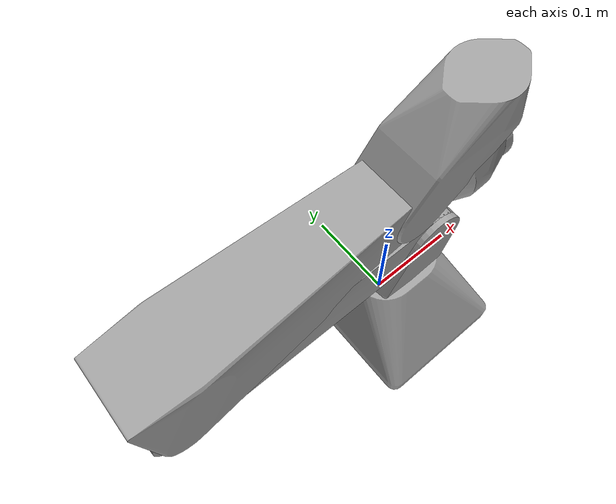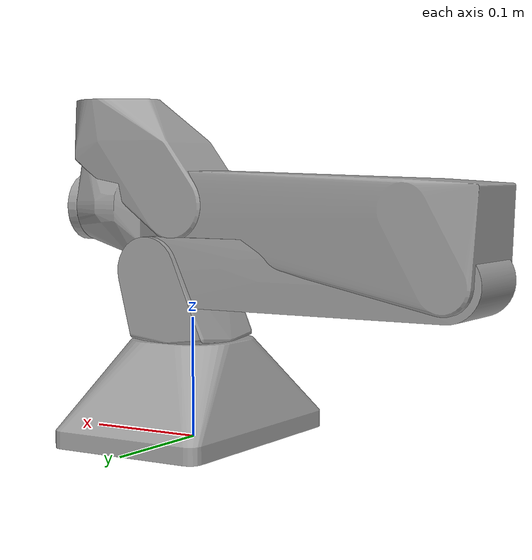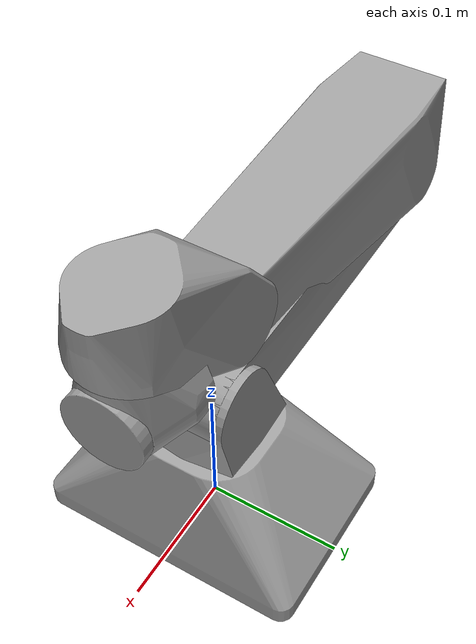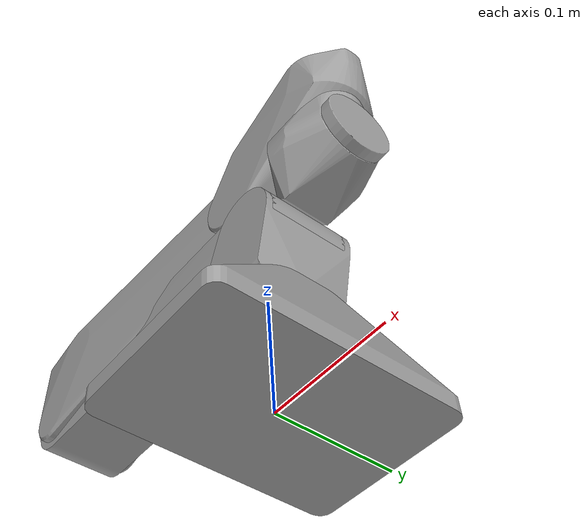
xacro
<?xml version="1.0"?>
<robot xmlns:xacro="http://www.ros.org/wiki/xacro" name="rebot_b601dm_driver">

  <xacro:arg name="prefix"       default=""/>
  <xacro:arg name="mesh_package" default="rebot_b601dm_description"/>

  <xacro:include filename="$(find rebot_b601dm_description)/urdf/rebot_b601dm_arm.xacro"/>

  <xacro:rebot_b601dm_arm prefix="$(arg prefix)" mesh_package="$(arg mesh_package)"/>

  <link name="$(arg prefix)gripper_link"/>
  <joint name="$(arg prefix)gripper_joint" type="fixed">
    <origin xyz="0 0 0.15971" rpy="0 -1.5708 0"/>
    <parent link="$(arg prefix)link6"/>
    <child  link="$(arg prefix)gripper_link"/>
  </joint>

  <!-- The SDK's end_effector_frame. Pose-identical to the full model's
       gripper_tcp by construction. -->
  <link name="$(arg prefix)end_link"/>
  <joint name="$(arg prefix)end_joint" type="fixed">
    <origin xyz="-0.0443 0 0" rpy="0 0 0"/>
    <parent link="$(arg prefix)gripper_link"/>
    <child  link="$(arg prefix)end_link"/>
  </joint>

  <!--
    gripper_tcp is also exposed here, coincident with end_link, so code written
    against the canonical name resolves in both models. Again fixed, so nq == 6.
  -->
  <link name="$(arg prefix)gripper_tcp"/>
  <joint name="$(arg prefix)gripper_tcp_joint" type="fixed">
    <origin xyz="0 0 0" rpy="0 0 0"/>
    <parent link="$(arg prefix)end_link"/>
    <child  link="$(arg prefix)gripper_tcp"/>
  </joint>

</robot>

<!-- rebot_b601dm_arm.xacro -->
<robot xmlns:xacro="http://www.ros.org/wiki/xacro">

  <!-- Velocity limits, kept as properties so the values appear exactly once. -->
  <xacro:property name="vel_j123" value="5.0"/>
  <xacro:property name="vel_j456" value="3.0"/>

  <xacro:macro name="rebot_b601dm_arm" params="prefix mesh_package">

    <link name="${prefix}base_link">
      <inertial>
        <origin xyz="-2.70523135620574E-06 -7.70134319499296E-06 0.028980835090929" rpy="0 0 0"/>
        <mass value="0.79874480798149"/>
        <inertia ixx="0.00167922927706365" ixy="1.88775164237686E-09" ixz="-1.97136369561029E-08"
                 iyy="0.00100413042930826" iyz="2.1823444305057E-07"  izz="0.00243992061460991"/>
      </inertial>
      <visual>
        <origin xyz="0 0 0" rpy="0 0 0"/>
        <geometry><mesh filename="package://${mesh_package}/meshes/visual/base_link.STL"/></geometry>
        <material name="rebot_grey"><color rgba="0.627450980392157 0.627450980392157 0.627450980392157 1"/></material>
      </visual>
      <collision>
        <origin xyz="0 0 0" rpy="0 0 0"/>
        <geometry><mesh filename="package://${mesh_package}/meshes/collision/base_link.STL"/></geometry>
      </collision>
    </link>

    <link name="${prefix}link1">
      <inertial>
        <origin xyz="1.20584908205569E-05 -0.00052246270024925 0.0197721792915801" rpy="0 0 0"/>
        <mass value="0.0840736498625263"/>
        <inertia ixx="8.53930680558479E-05" ixy="5.36083090564592E-11" ixz="8.1878892265138E-06"
                 iyy="5.08885968641724E-05" iyz="1.61532065580032E-10" izz="8.03867731313707E-05"/>
      </inertial>
      <visual>
        <origin xyz="0 0 0" rpy="0 0 0"/>
        <geometry><mesh filename="package://${mesh_package}/meshes/visual/link1.STL"/></geometry>
        <material name="rebot_grey"/>
      </visual>
      <collision>
        <origin xyz="0 0 0" rpy="0 0 0"/>
        <geometry><mesh filename="package://${mesh_package}/meshes/collision/link1.STL"/></geometry>
      </collision>
    </link>

    <joint name="${prefix}joint1" type="revolute">
      <origin xyz="-8.416E-05 0 0.08465" rpy="0 0 0"/>
      <parent link="${prefix}base_link"/>
      <child  link="${prefix}link1"/>
      <axis xyz="0 0 1"/>
      <limit lower="-2.8" upper="2.8" effort="27" velocity="${vel_j123}"/>
    </joint>

    <link name="${prefix}link2">
      <inertial>
        <origin xyz="-0.13224463371047 -0.00305031595315752 -0.0309299400248282" rpy="0 0 0"/>
        <mass value="0.710394385134637"/>
        <inertia ixx="0.00025002655459552" ixy="1.60716279794484E-06" ixz="2.51351488848234E-09"
                 iyy="0.00186321981627926" iyz="4.36542160316282E-07" izz="0.00186007710433815"/>
      </inertial>
      <visual>
        <origin xyz="0 0 0" rpy="0 0 0"/>
        <geometry><mesh filename="package://${mesh_package}/meshes/visual/link2.STL"/></geometry>
        <material name="rebot_grey"/>
      </visual>
      <collision>
        <origin xyz="0 0 0" rpy="0 0 0"/>
        <geometry><mesh filename="package://${mesh_package}/meshes/collision/link2.STL"/></geometry>
      </collision>
    </link>

    <joint name="${prefix}joint2" type="revolute">
      <origin xyz="0.020084 0.031625 0.05555" rpy="-1.5708 0 0"/>
      <parent link="${prefix}link1"/>
      <child  link="${prefix}link2"/>
      <axis xyz="0 0 -1"/>
      <limit lower="-3.14" upper="0" effort="27" velocity="${vel_j123}"/>
    </joint>

    <link name="${prefix}link3">
      <inertial>
        <origin xyz="0.121507513231219 -0.0537568110789665 -0.0310861781010256" rpy="0 0 0"/>
        <mass value="0.524941641478664"/>
        <inertia ixx="0.000160157099221732" ixy="-1.6160403467948E-05" ixz="-3.33082723997513E-06"
                 iyy="0.00124905589930288"  iyz="2.96940939137566E-07" izz="0.00125568117526574"/>
      </inertial>
      <visual>
        <origin xyz="0 0 0" rpy="0 0 0"/>
        <geometry><mesh filename="package://${mesh_package}/meshes/visual/link3.STL"/></geometry>
        <material name="rebot_grey"/>
      </visual>
      <collision>
        <origin xyz="0 0 0" rpy="0 0 0"/>
        <geometry><mesh filename="package://${mesh_package}/meshes/collision/link3.STL"/></geometry>
      </collision>
    </link>

    <joint name="${prefix}joint3" type="revolute">
      <origin xyz="-0.264 0 0" rpy="0 0 0"/>
      <parent link="${prefix}link2"/>
      <child  link="${prefix}link3"/>
      <axis xyz="0 0 1"/>
      <limit lower="-3.14" upper="0" effort="27" velocity="${vel_j123}"/>
    </joint>

    <link name="${prefix}link4">
      <inertial>
        <origin xyz="0.0612381846323297 -0.0515229512574568 -0.0303340352965348" rpy="0 0 0"/>
        <mass value="0.191139210973019"/>
        <inertia ixx="7.18184289370392E-05" ixy="-1.12301944951731E-05" ixz="-5.19641435494074E-08"
                 iyy="0.000112900067589117" iyz="2.21782677668291E-07"  izz="0.000101141504876404"/>
      </inertial>
      <visual>
        <origin xyz="0 0 0" rpy="0 0 0"/>
        <geometry><mesh filename="package://${mesh_package}/meshes/visual/link4.STL"/></geometry>
        <material name="rebot_grey"/>
      </visual>
      <collision>
        <origin xyz="0 0 0" rpy="0 0 0"/>
        <geometry><mesh filename="package://${mesh_package}/meshes/collision/link4.STL"/></geometry>
      </collision>
    </link>

    <joint name="${prefix}joint4" type="revolute">
      <origin xyz="0.2426 -0.054 -0.001625" rpy="0 0 0"/>
      <parent link="${prefix}link3"/>
      <child  link="${prefix}link4"/>
      <axis xyz="0 0 1"/>
      <limit lower="-1.87" upper="1.57" effort="7" velocity="${vel_j456}"/>
    </joint>

    <link name="${prefix}link5">
      <inertial>
        <origin xyz="-0.00504933072901427 1.74603011302099E-06 0.0387866303374511" rpy="0 0 0"/>
        <mass value="0.150004102113546"/>
        <inertia ixx="6.79196566487009E-05" ixy="-7.20237013118825E-10" ixz="-2.82554291275232E-06"
                 iyy="5.17186991502111E-05" iyz="9.87947763397051E-09"  izz="5.43656904496111E-05"/>
      </inertial>
      <visual>
        <origin xyz="0 0 0" rpy="0 0 0"/>
        <geometry><mesh filename="package://${mesh_package}/meshes/visual/link5.STL"/></geometry>
        <material name="rebot_grey"/>
      </visual>
      <collision>
        <origin xyz="0 0 0" rpy="0 0 0"/>
        <geometry><mesh filename="package://${mesh_package}/meshes/collision/link5.STL"/></geometry>
      </collision>
    </link>

    <joint name="${prefix}joint5" type="revolute">
      <origin xyz="0.078308 -0.0375 -0.03" rpy="-1.5708 0 0"/>
      <parent link="${prefix}link4"/>
      <child  link="${prefix}link5"/>
      <axis xyz="0 0 1"/>
      <limit lower="-1.57" upper="1.57" effort="7" velocity="${vel_j456}"/>
    </joint>

    <link name="${prefix}link6">
      <inertial>
        <origin xyz="-1.76034430143801E-05 7.61449749622373E-09 0.00431722560895041" rpy="0 0 0"/>
        <mass value="0.0187271664583674"/>
        <inertia ixx="4.42801172036323E-06" ixy="1.26927907319828E-13" ixz="-1.52049684129749E-10"
                 iyy="4.37712746743999E-06" iyz="-2.5907655197107E-13" izz="8.55249688102954E-06"/>
      </inertial>
      <visual>
        <origin xyz="0 0 0" rpy="0 0 0"/>
        <geometry><mesh filename="package://${mesh_package}/meshes/visual/link6.STL"/></geometry>
        <material name="rebot_grey"/>
      </visual>
      <collision>
        <origin xyz="0 0 0" rpy="0 0 0"/>
        <geometry><mesh filename="package://${mesh_package}/meshes/collision/link6.STL"/></geometry>
      </collision>
    </link>

    <joint name="${prefix}joint6" type="revolute">
      <origin xyz="0.023692 0 0.04" rpy="0 1.5708 0"/>
      <parent link="${prefix}link5"/>
      <child  link="${prefix}link6"/>
      <axis xyz="0 0 1"/>
      <limit lower="-3.14" upper="3.14" effort="7" velocity="${vel_j456}"/>
    </joint>

  </xacro:macro>
</robot>
